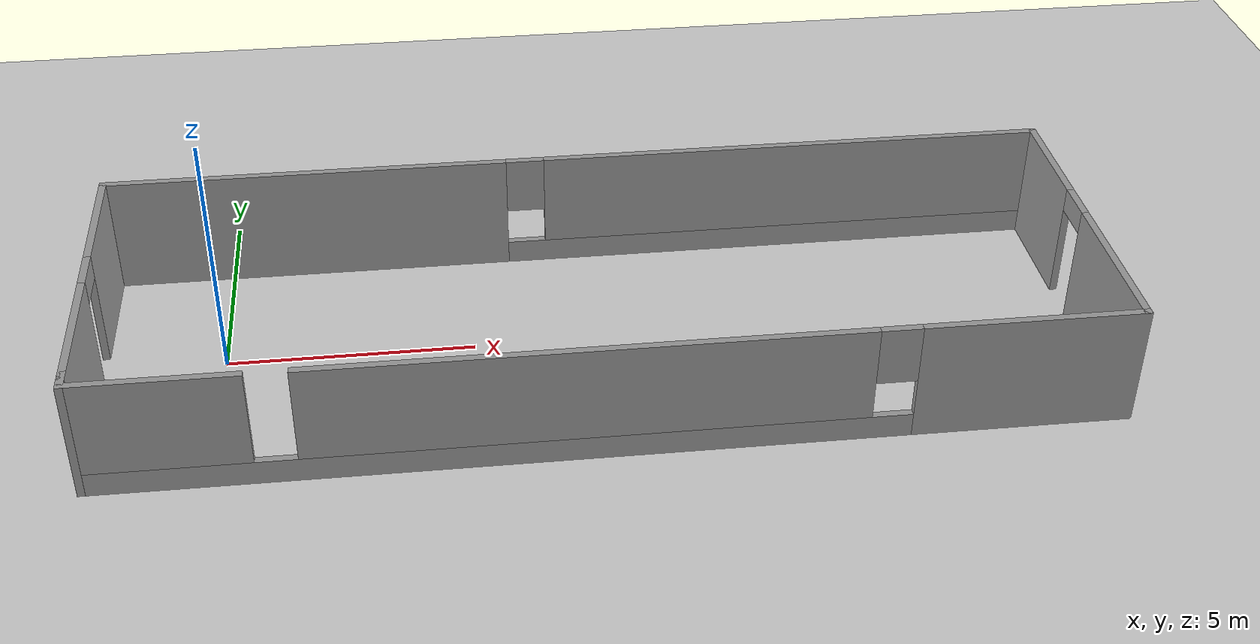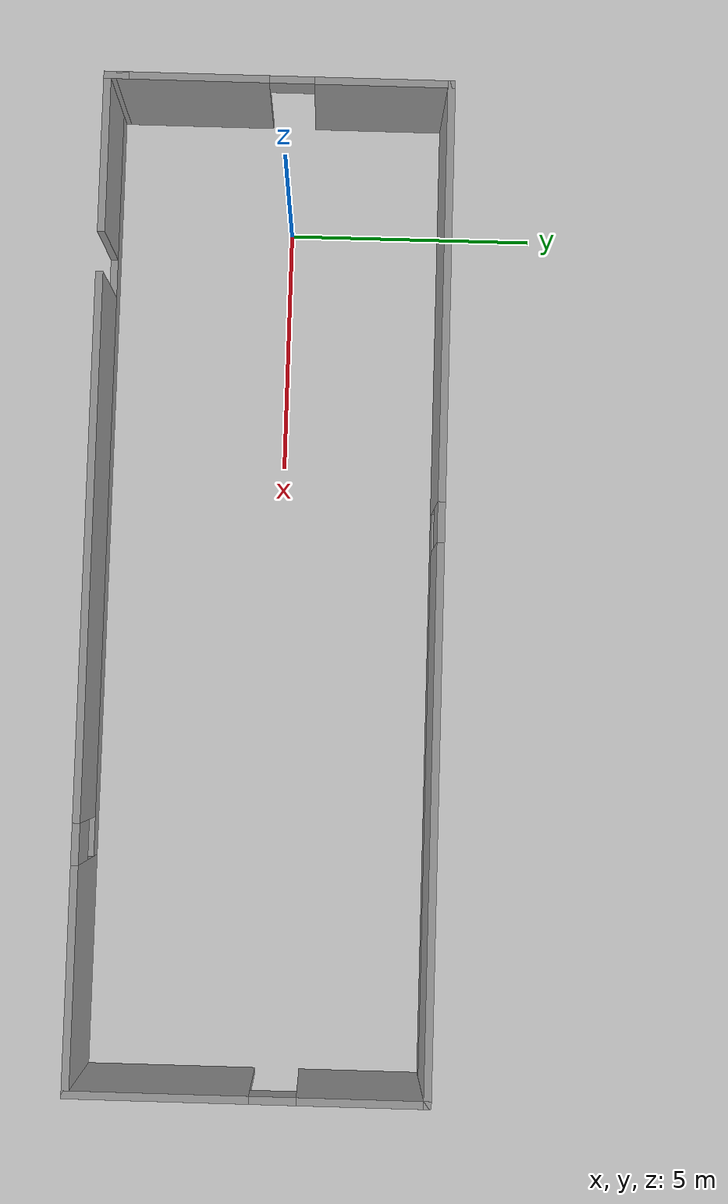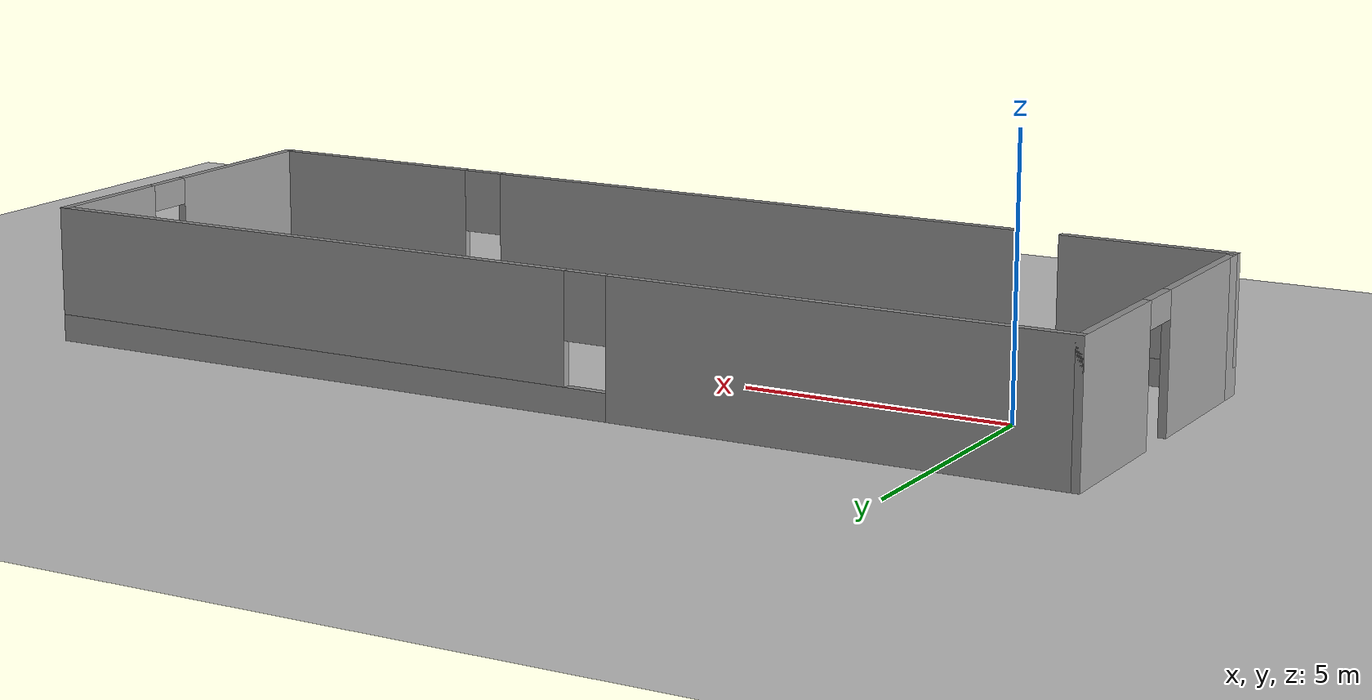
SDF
<sdf version="1.7">
 <world name="default">
  <light name="sun" type="directional">
   <pose>0 0 10 0 -0 0</pose>
   <diffuse>0.8 0.8 0.8 1</diffuse>
   <specular>0.2 0.2 0.2 1</specular>
   <attenuation>
    <range>1000</range>
    <constant>0.9</constant>
    <linear>0.01</linear>
    <quadratic>0.001</quadratic>
   </attenuation>
   <direction>-0.5 0.1 -0.9</direction>
   <spot><inner_angle>0</inner_angle><outer_angle>0</outer_angle><falloff>0</falloff></spot>
  </light>
  <model name="ground_plane">
   <static>1</static>
   <link name="link">
    <collision name="collision">
     <geometry><plane><normal>0 0 1</normal><size>100 100</size></plane></geometry>
     <surface><friction><ode><mu>100</mu><mu2>50</mu2></ode></friction></surface>
    </collision>
    <visual name="visual">
     <cast_shadows>0</cast_shadows>
     <geometry><plane><normal>0 0 1</normal><size>100 100</size></plane></geometry>
     <material>
      <script><uri>file://media/materials/scripts/gazebo.material</uri><name>Gazebo/Grey</name></script>
     </material>
    </visual>
   </link>
  </model>
  <gravity>0 0 -9.8</gravity>
  <magnetic_field>6e-06 2.3e-05 -4.2e-05</magnetic_field>
  <atmosphere type="adiabatic"/>
  <physics type="ode">
   <max_step_size>0.001</max_step_size>
   <real_time_factor>1</real_time_factor>
   <real_time_update_rate>1000</real_time_update_rate>
  </physics>
  <scene><ambient>0.4 0.4 0.4 1</ambient><background>0.7 0.7 0.7 1</background><shadows>1</shadows></scene>
  <audio><device>default</device></audio>
  <spherical_coordinates>
   <surface_model>EARTH_WGS84</surface_model>
   <latitude_deg>0</latitude_deg>
   <longitude_deg>0</longitude_deg>
   <elevation>0</elevation>
   <heading_deg>0</heading_deg>
  </spherical_coordinates>
  <model name="test_world">
   <pose>7.49389 -0.272007 0 0 -0 0</pose>
   <link name="Wall_0">
    <pose>-9.925 0.125 0 0 -0 1.5708</pose>
    <visual name="Wall_0_Visual_0">
     <pose>-1.85122 0 1.25 0 -0 0</pose>
     <geometry><box><size>3.04756 0.15 2.5</size></box></geometry>
     <material>
      <script><uri>file://media/materials/scripts/gazebo.material</uri><name>Gazebo/Grey</name></script>
      <ambient>1 1 1 1</ambient>
     </material>
     <meta><layer>0</layer></meta>
    </visual>
    <collision name="Wall_0_Collision_0">
     <geometry><box><size>3.04756 0.15 2.5</size></box></geometry>
     <pose>-1.85122 0 1.25 0 -0 0</pose>
    </collision>
    <visual name="Wall_0_Visual_1">
     <pose>1.97378 0 1.25 0 -0 0</pose>
     <geometry><box><size>2.80244 0.15 2.5</size></box></geometry>
     <material>
      <script><uri>file://media/materials/scripts/gazebo.material</uri><name>Gazebo/Grey</name></script>
      <ambient>1 1 1 1</ambient>
     </material>
     <meta><layer>0</layer></meta>
    </visual>
    <collision name="Wall_0_Collision_1">
     <geometry><box><size>2.80244 0.15 2.5</size></box></geometry>
     <pose>1.97378 0 1.25 0 -0 0</pose>
    </collision>
    <visual name="Wall_0_Visual_2">
     <pose>0.122564 0 2.25 0 -0 0</pose>
     <geometry><box><size>0.9 0.15 0.5</size></box></geometry>
     <material>
      <script><uri>file://media/materials/scripts/gazebo.material</uri><name>Gazebo/Grey</name></script>
      <ambient>1 1 1 1</ambient>
     </material>
     <meta><layer>0</layer></meta>
    </visual>
    <collision name="Wall_0_Collision_2">
     <geometry><box><size>0.9 0.15 0.5</size></box></geometry>
     <pose>0.122564 0 2.25 0 -0 0</pose>
    </collision>
   </link>
   <link name="Wall_2">
    <pose>0 3.425 0 0 -0 0</pose>
    <visual name="Wall_2_Visual_0">
     <pose>-5.78027 0 1.25 0 -0 0</pose>
     <geometry><box><size>8.43946 0.15 2.5</size></box></geometry>
     <material>
      <script><uri>file://media/materials/scripts/gazebo.material</uri><name>Gazebo/Grey</name></script>
      <ambient>1 1 1 1</ambient>
     </material>
     <meta><layer>0</layer></meta>
    </visual>
    <collision name="Wall_2_Collision_0">
     <geometry><box><size>8.43946 0.15 2.5</size></box></geometry>
     <pose>-5.78027 0 1.25 0 -0 0</pose>
    </collision>
    <visual name="Wall_2_Visual_1">
     <pose>4.21973 0 0.25 0 -0 0</pose>
     <geometry><box><size>11.5605 0.15 0.5</size></box></geometry>
     <material>
      <script><uri>file://media/materials/scripts/gazebo.material</uri><name>Gazebo/Grey</name></script>
      <ambient>1 1 1 1</ambient>
     </material>
     <meta><layer>0</layer></meta>
    </visual>
    <collision name="Wall_2_Collision_1">
     <geometry><box><size>11.5605 0.15 0.5</size></box></geometry>
     <pose>4.21973 0 0.25 0 -0 0</pose>
    </collision>
    <visual name="Wall_2_Visual_2">
     <pose>4.61973 0 1.5 0 -0 0</pose>
     <geometry><box><size>10.7605 0.15 2</size></box></geometry>
     <material>
      <script><uri>file://media/materials/scripts/gazebo.material</uri><name>Gazebo/Grey</name></script>
      <ambient>1 1 1 1</ambient>
     </material>
     <meta><layer>0</layer></meta>
    </visual>
    <collision name="Wall_2_Collision_2">
     <geometry><box><size>10.7605 0.15 2</size></box></geometry>
     <pose>4.61973 0 1.5 0 -0 0</pose>
    </collision>
    <visual name="Wall_2_Visual_3">
     <pose>-1.16054 0 1.9 0 -0 0</pose>
     <geometry><box><size>0.8 0.15 1.2</size></box></geometry>
     <material>
      <script><uri>file://media/materials/scripts/gazebo.material</uri><name>Gazebo/Grey</name></script>
      <ambient>1 1 1 1</ambient>
     </material>
     <meta><layer>0</layer></meta>
    </visual>
    <collision name="Wall_2_Collision_3">
     <geometry><box><size>0.8 0.15 1.2</size></box></geometry>
     <pose>-1.16054 0 1.9 0 -0 0</pose>
    </collision>
   </link>
   <link name="Wall_3">
    <pose>9.925 0 0 0 -0 -1.5708</pose>
    <visual name="Wall_3_Visual_0">
     <pose>-2.22121 0 1.25 0 -0 0</pose>
     <geometry><box><size>2.55757 0.15 2.5</size></box></geometry>
     <material>
      <script><uri>file://media/materials/scripts/gazebo.material</uri><name>Gazebo/Grey</name></script>
      <ambient>1 1 1 1</ambient>
     </material>
     <meta><layer>0</layer></meta>
    </visual>
    <collision name="Wall_3_Collision_0">
     <geometry><box><size>2.55757 0.15 2.5</size></box></geometry>
     <pose>-2.22121 0 1.25 0 -0 0</pose>
    </collision>
    <visual name="Wall_3_Visual_1">
     <pose>1.72879 0 1.25 0 -0 0</pose>
     <geometry><box><size>3.54243 0.15 2.5</size></box></geometry>
     <material>
      <script><uri>file://media/materials/scripts/gazebo.material</uri><name>Gazebo/Grey</name></script>
      <ambient>1 1 1 1</ambient>
     </material>
     <meta><layer>0</layer></meta>
    </visual>
    <collision name="Wall_3_Collision_1">
     <geometry><box><size>3.54243 0.15 2.5</size></box></geometry>
     <pose>1.72879 0 1.25 0 -0 0</pose>
    </collision>
    <visual name="Wall_3_Visual_2">
     <pose>-0.492425 0 2.25 0 -0 0</pose>
     <geometry><box><size>0.9 0.15 0.5</size></box></geometry>
     <material>
      <script><uri>file://media/materials/scripts/gazebo.material</uri><name>Gazebo/Grey</name></script>
      <ambient>1 1 1 1</ambient>
     </material>
     <meta><layer>0</layer></meta>
    </visual>
    <collision name="Wall_3_Collision_2">
     <geometry><box><size>0.9 0.15 0.5</size></box></geometry>
     <pose>-0.492425 0 2.25 0 -0 0</pose>
    </collision>
   </link>
   <link name="Wall_4">
    <pose>0 -3.425 0 0 -0 3.14159</pose>
    <visual name="Wall_4_Visual_0">
     <pose>-7.82041 0 1.25 0 -0 0</pose>
     <geometry><box><size>4.35917 0.15 2.5</size></box></geometry>
     <material>
      <script><uri>file://media/materials/scripts/gazebo.material</uri><name>Gazebo/Grey</name></script>
      <ambient>1 1 1 1</ambient>
     </material>
     <meta><layer>0</layer></meta>
    </visual>
    <collision name="Wall_4_Collision_0">
     <geometry><box><size>4.35917 0.15 2.5</size></box></geometry>
     <pose>-7.82041 0 1.25 0 -0 0</pose>
    </collision>
    <visual name="Wall_4_Visual_1">
     <pose>2.17959 0 0.25 0 -0 0</pose>
     <geometry><box><size>15.6408 0.15 0.5</size></box></geometry>
     <material>
      <script><uri>file://media/materials/scripts/gazebo.material</uri><name>Gazebo/Grey</name></script>
      <ambient>1 1 1 1</ambient>
     </material>
     <meta><layer>0</layer></meta>
    </visual>
    <collision name="Wall_4_Collision_1">
     <geometry><box><size>15.6408 0.15 0.5</size></box></geometry>
     <pose>2.17959 0 0.25 0 -0 0</pose>
    </collision>
    <visual name="Wall_4_Visual_2">
     <pose>0.548384 0 1.5 0 -0 0</pose>
     <geometry><box><size>10.7784 0.15 2</size></box></geometry>
     <material>
      <script><uri>file://media/materials/scripts/gazebo.material</uri><name>Gazebo/Grey</name></script>
      <ambient>1 1 1 1</ambient>
     </material>
     <meta><layer>0</layer></meta>
    </visual>
    <collision name="Wall_4_Collision_2">
     <geometry><box><size>10.7784 0.15 2</size></box></geometry>
     <pose>0.548384 0 1.5 0 -0 0</pose>
    </collision>
    <visual name="Wall_4_Visual_3">
     <pose>8.3688 0 1.5 0 -0 0</pose>
     <geometry><box><size>3.26241 0.15 2</size></box></geometry>
     <material>
      <script><uri>file://media/materials/scripts/gazebo.material</uri><name>Gazebo/Grey</name></script>
      <ambient>1 1 1 1</ambient>
     </material>
     <meta><layer>0</layer></meta>
    </visual>
    <collision name="Wall_4_Collision_3">
     <geometry><box><size>3.26241 0.15 2</size></box></geometry>
     <pose>8.3688 0 1.5 0 -0 0</pose>
    </collision>
    <visual name="Wall_4_Visual_4">
     <pose>-5.24083 0 1.9 0 -0 0</pose>
     <geometry><box><size>0.8 0.15 1.2</size></box></geometry>
     <material>
      <script><uri>file://media/materials/scripts/gazebo.material</uri><name>Gazebo/Grey</name></script>
      <ambient>1 1 1 1</ambient>
     </material>
     <meta><layer>0</layer></meta>
    </visual>
    <collision name="Wall_4_Collision_4">
     <geometry><box><size>0.8 0.15 1.2</size></box></geometry>
     <pose>-5.24083 0 1.9 0 -0 0</pose>
    </collision>
    <visual name="Wall_4_Visual_5">
     <pose>5.93759 0 1.9 0 -0 0</pose>
     <geometry><box><size>0 0.15 1.2</size></box></geometry>
     <material>
      <script><uri>file://media/materials/scripts/gazebo.material</uri><name>Gazebo/Grey</name></script>
      <ambient>1 1 1 1</ambient>
     </material>
     <meta><layer>0</layer></meta>
    </visual>
    <collision name="Wall_4_Collision_5">
     <geometry><box><size>0 0.15 1.2</size></box></geometry>
     <pose>5.93759 0 1.9 0 -0 0</pose>
    </collision>
   </link>
   <link name="Wall_5">
    <collision name="Wall_5_Collision">
     <geometry><box><size>0.5 0.15 2.5</size></box></geometry>
     <pose>0 0 1.25 0 -0 0</pose>
    </collision>
    <visual name="Wall_5_Visual">
     <pose>0 0 1.25 0 -0 0</pose>
     <geometry><box><size>0.5 0.15 2.5</size></box></geometry>
     <material>
      <script><uri>file://media/materials/scripts/gazebo.material</uri><name>Gazebo/Grey</name></script>
      <ambient>1 1 1 1</ambient>
     </material>
     <meta><layer>0</layer></meta>
    </visual>
    <pose>-9.925 -3.25 0 0 -0 1.5708</pose>
   </link>
   <static>1</static>
  </model>
 </world>
</sdf>
